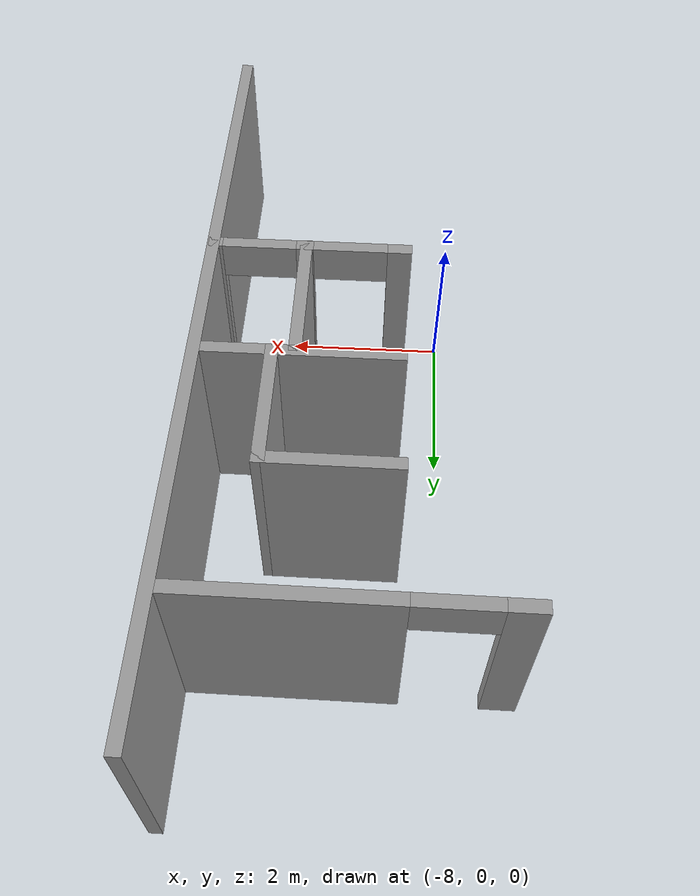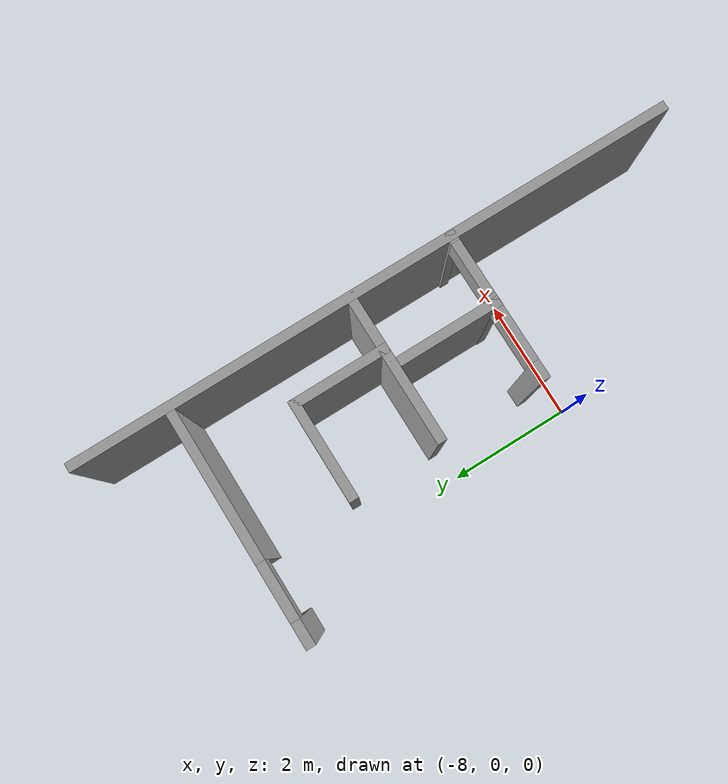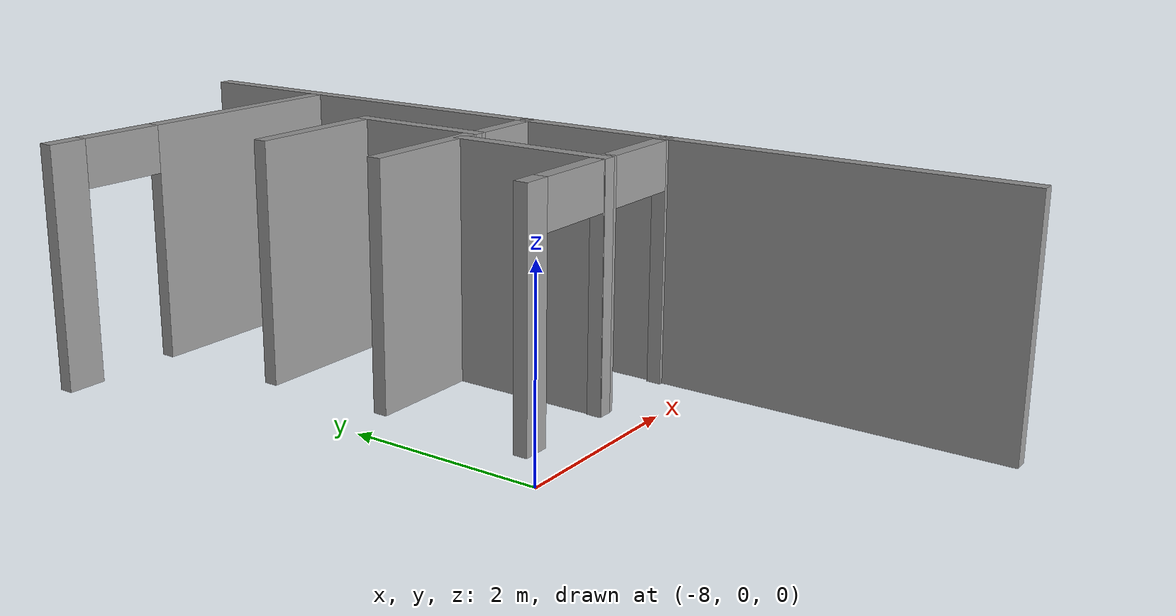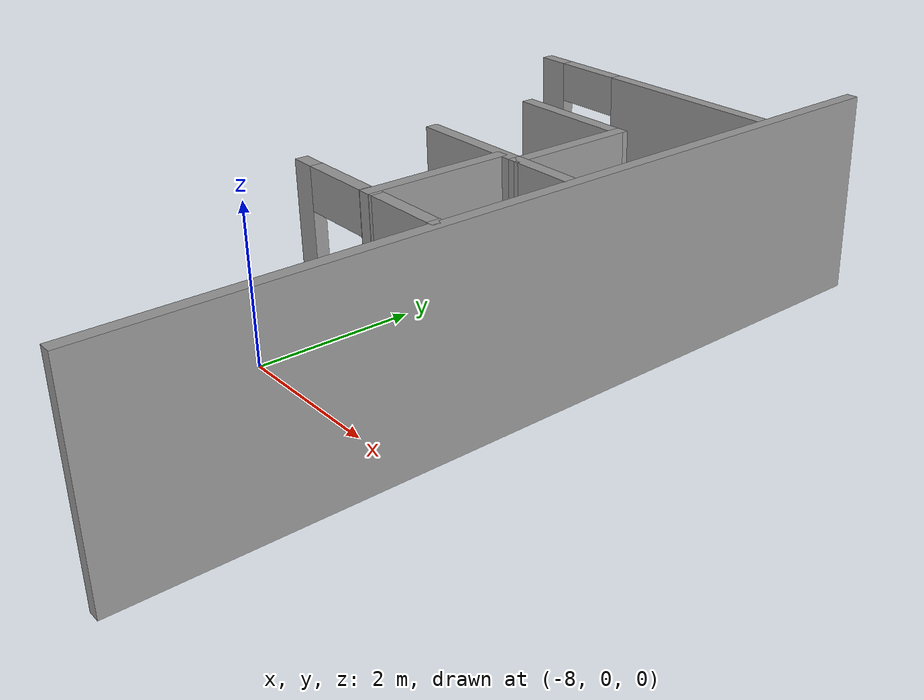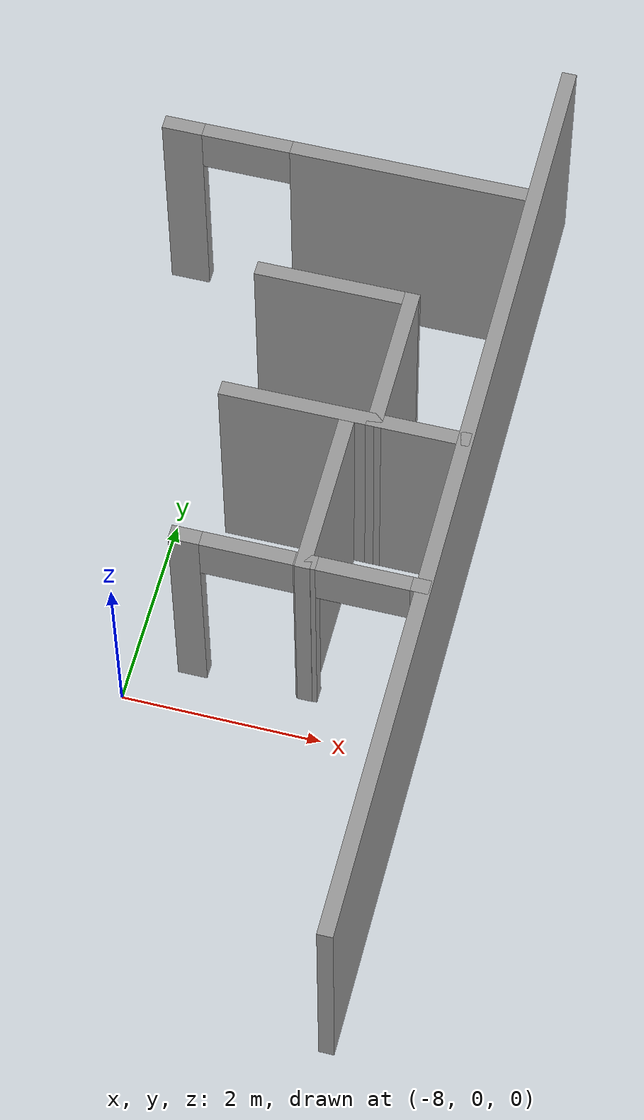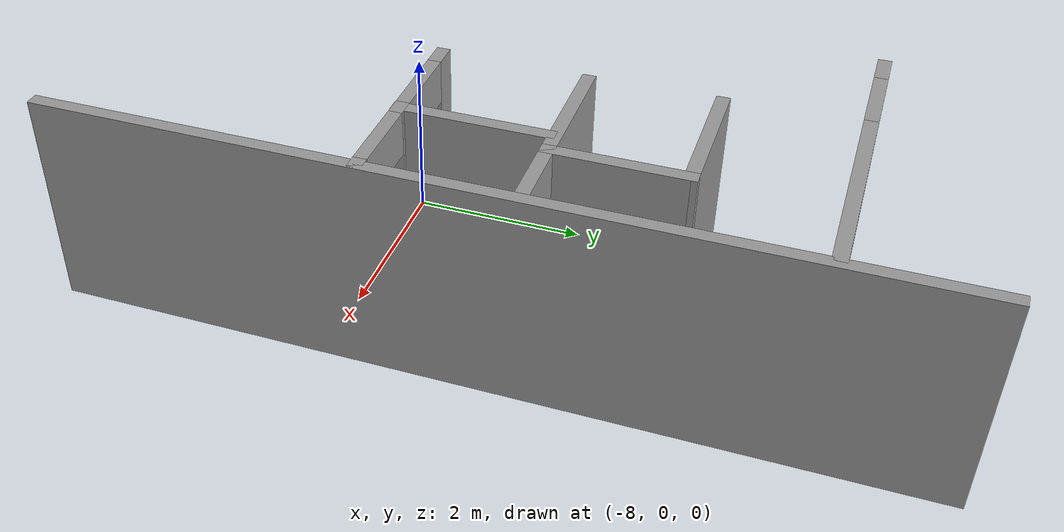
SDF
<sdf version="1.7">
 <model name="batimentH">
  <link name="Wall_12">
   <pose>-7.02318 5.08516 0 0 -0 0</pose>
   <visual name="Wall_12_Visual_0">
    <pose>-1.67123 0 1.25 0 -0 0</pose>
    <geometry><box><size>0.40754 0.15 2.5</size></box></geometry>
    <material>
     <script><uri>file://media/materials/scripts/gazebo.material</uri><name>Gazebo/Grey</name></script>
     <ambient>1 1 1 1</ambient>
     <shader type="pixel"/>
    </material>
    <meta><layer>0</layer></meta>
   </visual>
   <visual name="Wall_12_Visual_1">
    <pose>0.65377 0 1.25 0 -0 0</pose>
    <geometry><box><size>2.44246 0.15 2.5</size></box></geometry>
    <material>
     <script><uri>file://media/materials/scripts/gazebo.material</uri><name>Gazebo/Grey</name></script>
     <ambient>1 1 1 1</ambient>
     <shader type="pixel"/>
    </material>
    <meta><layer>0</layer></meta>
   </visual>
   <visual name="Wall_12_Visual_2">
    <pose>-1.01746 0 2.25 0 -0 0</pose>
    <geometry><box><size>0.9 0.15 0.5</size></box></geometry>
    <material>
     <script><uri>file://media/materials/scripts/gazebo.material</uri><name>Gazebo/Grey</name></script>
     <ambient>1 1 1 1</ambient>
     <shader type="pixel"/>
    </material>
    <meta><layer>0</layer></meta>
   </visual>
   <collision name="Wall_12_Collision_0">
    <pose>-1.67123 0 1.25 0 -0 0</pose>
    <geometry><box><size>0.40754 0.15 2.5</size></box></geometry>
    <surface>
     <friction>
      <ode><mu>1</mu><mu2>1</mu2><fdir1>0 0 0</fdir1><slip1>0</slip1><slip2>0</slip2></ode>
      <torsional>
       <coefficient>1</coefficient>
       <patch_radius>0</patch_radius>
       <surface_radius>0</surface_radius>
       <use_patch_radius>1</use_patch_radius>
       <ode><slip>0</slip></ode>
      </torsional>
     </friction>
     <bounce><restitution_coefficient>0</restitution_coefficient><threshold>1e+06</threshold></bounce>
     <contact>
      <collide_without_contact>0</collide_without_contact>
      <collide_without_contact_bitmask>1</collide_without_contact_bitmask>
      <collide_bitmask>1</collide_bitmask>
      <ode>
       <soft_cfm>0</soft_cfm>
       <soft_erp>0.2</soft_erp>
       <kp>1e+13</kp>
       <kd>1</kd>
       <max_vel>0.01</max_vel>
       <min_depth>0</min_depth>
      </ode>
      <bullet>
       <split_impulse>1</split_impulse>
       <split_impulse_penetration_threshold>-0.01</split_impulse_penetration_threshold>
       <soft_cfm>0</soft_cfm>
       <soft_erp>0.2</soft_erp>
       <kp>1e+13</kp>
       <kd>1</kd>
      </bullet>
     </contact>
    </surface>
   </collision>
   <collision name="Wall_12_Collision_1">
    <pose>0.65377 0 1.25 0 -0 0</pose>
    <geometry><box><size>2.44246 0.15 2.5</size></box></geometry>
    <surface>
     <friction>
      <ode><mu>1</mu><mu2>1</mu2><fdir1>0 0 0</fdir1><slip1>0</slip1><slip2>0</slip2></ode>
      <torsional>
       <coefficient>1</coefficient>
       <patch_radius>0</patch_radius>
       <surface_radius>0</surface_radius>
       <use_patch_radius>1</use_patch_radius>
       <ode><slip>0</slip></ode>
      </torsional>
     </friction>
     <bounce><restitution_coefficient>0</restitution_coefficient><threshold>1e+06</threshold></bounce>
     <contact>
      <collide_without_contact>0</collide_without_contact>
      <collide_without_contact_bitmask>1</collide_without_contact_bitmask>
      <collide_bitmask>1</collide_bitmask>
      <ode>
       <soft_cfm>0</soft_cfm>
       <soft_erp>0.2</soft_erp>
       <kp>1e+13</kp>
       <kd>1</kd>
       <max_vel>0.01</max_vel>
       <min_depth>0</min_depth>
      </ode>
      <bullet>
       <split_impulse>1</split_impulse>
       <split_impulse_penetration_threshold>-0.01</split_impulse_penetration_threshold>
       <soft_cfm>0</soft_cfm>
       <soft_erp>0.2</soft_erp>
       <kp>1e+13</kp>
       <kd>1</kd>
      </bullet>
     </contact>
    </surface>
   </collision>
   <collision name="Wall_12_Collision_2">
    <pose>-1.01746 0 2.25 0 -0 0</pose>
    <geometry><box><size>0.9 0.15 0.5</size></box></geometry>
    <surface>
     <friction>
      <ode><mu>1</mu><mu2>1</mu2><fdir1>0 0 0</fdir1><slip1>0</slip1><slip2>0</slip2></ode>
      <torsional>
       <coefficient>1</coefficient>
       <patch_radius>0</patch_radius>
       <surface_radius>0</surface_radius>
       <use_patch_radius>1</use_patch_radius>
       <ode><slip>0</slip></ode>
      </torsional>
     </friction>
     <bounce><restitution_coefficient>0</restitution_coefficient><threshold>1e+06</threshold></bounce>
     <contact>
      <collide_without_contact>0</collide_without_contact>
      <collide_without_contact_bitmask>1</collide_without_contact_bitmask>
      <collide_bitmask>1</collide_bitmask>
      <ode>
       <soft_cfm>0</soft_cfm>
       <soft_erp>0.2</soft_erp>
       <kp>1e+13</kp>
       <kd>1</kd>
       <max_vel>0.01</max_vel>
       <min_depth>0</min_depth>
      </ode>
      <bullet>
       <split_impulse>1</split_impulse>
       <split_impulse_penetration_threshold>-0.01</split_impulse_penetration_threshold>
       <soft_cfm>0</soft_cfm>
       <soft_erp>0.2</soft_erp>
       <kp>1e+13</kp>
       <kd>1</kd>
      </bullet>
     </contact>
    </surface>
   </collision>
  </link>
  <link name="Wall_16">
   <pose>-5.12746 1.74768 0 0 -0 1.5708</pose>
   <visual name="Wall_16_Visual">
    <pose>0 0 1.25 0 -0 0</pose>
    <geometry><box><size>9.82652 0.15 2.5</size></box></geometry>
    <material>
     <script><uri>file://media/materials/scripts/gazebo.material</uri><name>Gazebo/Grey</name></script>
     <ambient>1 1 1 1</ambient>
     <shader type="pixel"/>
    </material>
    <meta><layer>0</layer></meta>
   </visual>
   <collision name="Wall_16_Collision">
    <pose>0 0 1.25 0 -0 0</pose>
    <geometry><box><size>9.82652 0.15 2.5</size></box></geometry>
    <surface>
     <friction>
      <ode><mu>1</mu><mu2>1</mu2><fdir1>0 0 0</fdir1><slip1>0</slip1><slip2>0</slip2></ode>
      <torsional>
       <coefficient>1</coefficient>
       <patch_radius>0</patch_radius>
       <surface_radius>0</surface_radius>
       <use_patch_radius>1</use_patch_radius>
       <ode><slip>0</slip></ode>
      </torsional>
     </friction>
     <bounce><restitution_coefficient>0</restitution_coefficient><threshold>1e+06</threshold></bounce>
     <contact>
      <collide_without_contact>0</collide_without_contact>
      <collide_without_contact_bitmask>1</collide_without_contact_bitmask>
      <collide_bitmask>1</collide_bitmask>
      <ode>
       <soft_cfm>0</soft_cfm>
       <soft_erp>0.2</soft_erp>
       <kp>1e+13</kp>
       <kd>1</kd>
       <max_vel>0.01</max_vel>
       <min_depth>0</min_depth>
      </ode>
      <bullet>
       <split_impulse>1</split_impulse>
       <split_impulse_penetration_threshold>-0.01</split_impulse_penetration_threshold>
       <soft_cfm>0</soft_cfm>
       <soft_erp>0.2</soft_erp>
       <kp>1e+13</kp>
       <kd>1</kd>
      </bullet>
     </contact>
    </surface>
   </collision>
  </link>
  <link name="Wall_20">
   <pose>-6.74218 3.58667 0 0 0 -0.000439</pose>
   <visual name="Wall_20_Visual">
    <pose>0 0 1.25 0 -0 0</pose>
    <geometry><box><size>1.62056 0.15 2.5</size></box></geometry>
    <material>
     <script><uri>file://media/materials/scripts/gazebo.material</uri><name>Gazebo/Grey</name></script>
     <ambient>1 1 1 1</ambient>
     <shader type="pixel"/>
    </material>
    <meta><layer>0</layer></meta>
   </visual>
   <collision name="Wall_20_Collision">
    <pose>0 0 1.25 0 -0 0</pose>
    <geometry><box><size>1.62056 0.15 2.5</size></box></geometry>
    <surface>
     <friction>
      <ode><mu>1</mu><mu2>1</mu2><fdir1>0 0 0</fdir1><slip1>0</slip1><slip2>0</slip2></ode>
      <torsional>
       <coefficient>1</coefficient>
       <patch_radius>0</patch_radius>
       <surface_radius>0</surface_radius>
       <use_patch_radius>1</use_patch_radius>
       <ode><slip>0</slip></ode>
      </torsional>
     </friction>
     <bounce><restitution_coefficient>0</restitution_coefficient><threshold>1e+06</threshold></bounce>
     <contact>
      <collide_without_contact>0</collide_without_contact>
      <collide_without_contact_bitmask>1</collide_without_contact_bitmask>
      <collide_bitmask>1</collide_bitmask>
      <ode>
       <soft_cfm>0</soft_cfm>
       <soft_erp>0.2</soft_erp>
       <kp>1e+13</kp>
       <kd>1</kd>
       <max_vel>0.01</max_vel>
       <min_depth>0</min_depth>
      </ode>
      <bullet>
       <split_impulse>1</split_impulse>
       <split_impulse_penetration_threshold>-0.01</split_impulse_penetration_threshold>
       <soft_cfm>0</soft_cfm>
       <soft_erp>0.2</soft_erp>
       <kp>1e+13</kp>
       <kd>1</kd>
      </bullet>
     </contact>
    </surface>
   </collision>
  </link>
  <link name="Wall_21">
   <pose>-6.0069 2.86964 0 0 0 -1.5708</pose>
   <visual name="Wall_21_Visual">
    <pose>0 0 1.25 0 -0 0</pose>
    <geometry><box><size>1.58344 0.15 2.5</size></box></geometry>
    <material>
     <script><uri>file://media/materials/scripts/gazebo.material</uri><name>Gazebo/Grey</name></script>
     <ambient>1 1 1 1</ambient>
     <shader type="pixel"/>
    </material>
    <meta><layer>0</layer></meta>
   </visual>
   <collision name="Wall_21_Collision">
    <pose>0 0 1.25 0 -0 0</pose>
    <geometry><box><size>1.58344 0.15 2.5</size></box></geometry>
    <surface>
     <friction>
      <ode><mu>1</mu><mu2>1</mu2><fdir1>0 0 0</fdir1><slip1>0</slip1><slip2>0</slip2></ode>
      <torsional>
       <coefficient>1</coefficient>
       <patch_radius>0</patch_radius>
       <surface_radius>0</surface_radius>
       <use_patch_radius>1</use_patch_radius>
       <ode><slip>0</slip></ode>
      </torsional>
     </friction>
     <bounce><restitution_coefficient>0</restitution_coefficient><threshold>1e+06</threshold></bounce>
     <contact>
      <collide_without_contact>0</collide_without_contact>
      <collide_without_contact_bitmask>1</collide_without_contact_bitmask>
      <collide_bitmask>1</collide_bitmask>
      <ode>
       <soft_cfm>0</soft_cfm>
       <soft_erp>0.2</soft_erp>
       <kp>1e+13</kp>
       <kd>1</kd>
       <max_vel>0.01</max_vel>
       <min_depth>0</min_depth>
      </ode>
      <bullet>
       <split_impulse>1</split_impulse>
       <split_impulse_penetration_threshold>-0.01</split_impulse_penetration_threshold>
       <soft_cfm>0</soft_cfm>
       <soft_erp>0.2</soft_erp>
       <kp>1e+13</kp>
       <kd>1</kd>
      </bullet>
     </contact>
    </surface>
   </collision>
  </link>
  <link name="Wall_22">
   <pose>-6.72679 2.15312 0 0 -0 3.14132</pose>
   <visual name="Wall_22_Visual">
    <pose>0 0 1.25 0 -0 0</pose>
    <geometry><box><size>1.58979 0.15 2.5</size></box></geometry>
    <material>
     <script><uri>file://media/materials/scripts/gazebo.material</uri><name>Gazebo/Grey</name></script>
     <ambient>1 1 1 1</ambient>
     <shader type="pixel"/>
    </material>
    <meta><layer>0</layer></meta>
   </visual>
   <collision name="Wall_22_Collision">
    <pose>0 0 1.25 0 -0 0</pose>
    <geometry><box><size>1.58979 0.15 2.5</size></box></geometry>
    <surface>
     <friction>
      <ode><mu>1</mu><mu2>1</mu2><fdir1>0 0 0</fdir1><slip1>0</slip1><slip2>0</slip2></ode>
      <torsional>
       <coefficient>1</coefficient>
       <patch_radius>0</patch_radius>
       <surface_radius>0</surface_radius>
       <use_patch_radius>1</use_patch_radius>
       <ode><slip>0</slip></ode>
      </torsional>
     </friction>
     <bounce><restitution_coefficient>0</restitution_coefficient><threshold>1e+06</threshold></bounce>
     <contact>
      <collide_without_contact>0</collide_without_contact>
      <collide_without_contact_bitmask>1</collide_without_contact_bitmask>
      <collide_bitmask>1</collide_bitmask>
      <ode>
       <soft_cfm>0</soft_cfm>
       <soft_erp>0.2</soft_erp>
       <kp>1e+13</kp>
       <kd>1</kd>
       <max_vel>0.01</max_vel>
       <min_depth>0</min_depth>
      </ode>
      <bullet>
       <split_impulse>1</split_impulse>
       <split_impulse_penetration_threshold>-0.01</split_impulse_penetration_threshold>
       <soft_cfm>0</soft_cfm>
       <soft_erp>0.2</soft_erp>
       <kp>1e+13</kp>
       <kd>1</kd>
      </bullet>
     </contact>
    </surface>
   </collision>
  </link>
  <link name="Wall_24">
   <pose>-6.30874 0.487126 0 0 -0 7.8e-05</pose>
   <visual name="Wall_24_Visual_0">
    <pose>-1.09192 0 1.25 0 -0 0</pose>
    <geometry><box><size>0.294914 0.15 2.5</size></box></geometry>
    <material>
     <script><uri>file://media/materials/scripts/gazebo.material</uri><name>Gazebo/Grey</name></script>
     <ambient>1 1 1 1</ambient>
     <shader type="pixel"/>
    </material>
    <meta><layer>0</layer></meta>
   </visual>
   <visual name="Wall_24_Visual_1">
    <pose>0.061146 0 1.25 0 -0 0</pose>
    <geometry><box><size>0.211218 0.15 2.5</size></box></geometry>
    <material>
     <script><uri>file://media/materials/scripts/gazebo.material</uri><name>Gazebo/Grey</name></script>
     <ambient>1 1 1 1</ambient>
     <shader type="pixel"/>
    </material>
    <meta><layer>0</layer></meta>
   </visual>
   <visual name="Wall_24_Visual_2">
    <pose>1.15307 0 1.25 0 -0 0</pose>
    <geometry><box><size>0.172622 0.15 2.5</size></box></geometry>
    <material>
     <script><uri>file://media/materials/scripts/gazebo.material</uri><name>Gazebo/Grey</name></script>
     <ambient>1 1 1 1</ambient>
     <shader type="pixel"/>
    </material>
    <meta><layer>0</layer></meta>
   </visual>
   <visual name="Wall_24_Visual_3">
    <pose>-0.494463 0 2.25 0 -0 0</pose>
    <geometry><box><size>0.9 0.15 0.5</size></box></geometry>
    <material>
     <script><uri>file://media/materials/scripts/gazebo.material</uri><name>Gazebo/Grey</name></script>
     <ambient>1 1 1 1</ambient>
     <shader type="pixel"/>
    </material>
    <meta><layer>0</layer></meta>
   </visual>
   <visual name="Wall_24_Visual_4">
    <pose>0.616755 0 2.25 0 -0 0</pose>
    <geometry><box><size>0.9 0.15 0.5</size></box></geometry>
    <material>
     <script><uri>file://media/materials/scripts/gazebo.material</uri><name>Gazebo/Grey</name></script>
     <ambient>1 1 1 1</ambient>
     <shader type="pixel"/>
    </material>
    <meta><layer>0</layer></meta>
   </visual>
   <collision name="Wall_24_Collision_0">
    <pose>-1.09192 0 1.25 0 -0 0</pose>
    <geometry><box><size>0.294914 0.15 2.5</size></box></geometry>
    <surface>
     <friction>
      <ode><mu>1</mu><mu2>1</mu2><fdir1>0 0 0</fdir1><slip1>0</slip1><slip2>0</slip2></ode>
      <torsional>
       <coefficient>1</coefficient>
       <patch_radius>0</patch_radius>
       <surface_radius>0</surface_radius>
       <use_patch_radius>1</use_patch_radius>
       <ode><slip>0</slip></ode>
      </torsional>
     </friction>
     <bounce><restitution_coefficient>0</restitution_coefficient><threshold>1e+06</threshold></bounce>
     <contact>
      <collide_without_contact>0</collide_without_contact>
      <collide_without_contact_bitmask>1</collide_without_contact_bitmask>
      <collide_bitmask>1</collide_bitmask>
      <ode>
       <soft_cfm>0</soft_cfm>
       <soft_erp>0.2</soft_erp>
       <kp>1e+13</kp>
       <kd>1</kd>
       <max_vel>0.01</max_vel>
       <min_depth>0</min_depth>
      </ode>
      <bullet>
       <split_impulse>1</split_impulse>
       <split_impulse_penetration_threshold>-0.01</split_impulse_penetration_threshold>
       <soft_cfm>0</soft_cfm>
       <soft_erp>0.2</soft_erp>
       <kp>1e+13</kp>
       <kd>1</kd>
      </bullet>
     </contact>
    </surface>
   </collision>
   <collision name="Wall_24_Collision_2">
    <pose>1.15307 0 1.25 0 -0 0</pose>
    <geometry><box><size>0.172622 0.15 2.5</size></box></geometry>
    <surface>
     <friction>
      <ode><mu>1</mu><mu2>1</mu2><fdir1>0 0 0</fdir1><slip1>0</slip1><slip2>0</slip2></ode>
      <torsional>
       <coefficient>1</coefficient>
       <patch_radius>0</patch_radius>
       <surface_radius>0</surface_radius>
       <use_patch_radius>1</use_patch_radius>
       <ode><slip>0</slip></ode>
      </torsional>
     </friction>
     <bounce><restitution_coefficient>0</restitution_coefficient><threshold>1e+06</threshold></bounce>
     <contact>
      <collide_without_contact>0</collide_without_contact>
      <collide_without_contact_bitmask>1</collide_without_contact_bitmask>
      <collide_bitmask>1</collide_bitmask>
      <ode>
       <soft_cfm>0</soft_cfm>
       <soft_erp>0.2</soft_erp>
       <kp>1e+13</kp>
       <kd>1</kd>
       <max_vel>0.01</max_vel>
       <min_depth>0</min_depth>
      </ode>
      <bullet>
       <split_impulse>1</split_impulse>
       <split_impulse_penetration_threshold>-0.01</split_impulse_penetration_threshold>
       <soft_cfm>0</soft_cfm>
       <soft_erp>0.2</soft_erp>
       <kp>1e+13</kp>
       <kd>1</kd>
      </bullet>
     </contact>
    </surface>
   </collision>
   <collision name="Wall_24_Collision_1">
    <pose>0.061146 0 1.25 0 -0 0</pose>
    <geometry><box><size>0.211218 0.15 2.5</size></box></geometry>
    <surface>
     <friction>
      <ode><mu>1</mu><mu2>1</mu2><fdir1>0 0 0</fdir1><slip1>0</slip1><slip2>0</slip2></ode>
      <torsional>
       <coefficient>1</coefficient>
       <patch_radius>0</patch_radius>
       <surface_radius>0</surface_radius>
       <use_patch_radius>1</use_patch_radius>
       <ode><slip>0</slip></ode>
      </torsional>
     </friction>
     <bounce><restitution_coefficient>0</restitution_coefficient><threshold>1e+06</threshold></bounce>
     <contact>
      <collide_without_contact>0</collide_without_contact>
      <collide_without_contact_bitmask>1</collide_without_contact_bitmask>
      <collide_bitmask>1</collide_bitmask>
      <ode>
       <soft_cfm>0</soft_cfm>
       <soft_erp>0.2</soft_erp>
       <kp>1e+13</kp>
       <kd>1</kd>
       <max_vel>0.01</max_vel>
       <min_depth>0</min_depth>
      </ode>
      <bullet>
       <split_impulse>1</split_impulse>
       <split_impulse_penetration_threshold>-0.01</split_impulse_penetration_threshold>
       <soft_cfm>0</soft_cfm>
       <soft_erp>0.2</soft_erp>
       <kp>1e+13</kp>
       <kd>1</kd>
      </bullet>
     </contact>
    </surface>
   </collision>
   <collision name="Wall_24_Collision_3">
    <pose>-0.494463 0 2.25 0 -0 0</pose>
    <geometry><box><size>0.9 0.15 0.5</size></box></geometry>
    <surface>
     <friction>
      <ode><mu>1</mu><mu2>1</mu2><fdir1>0 0 0</fdir1><slip1>0</slip1><slip2>0</slip2></ode>
      <torsional>
       <coefficient>1</coefficient>
       <patch_radius>0</patch_radius>
       <surface_radius>0</surface_radius>
       <use_patch_radius>1</use_patch_radius>
       <ode><slip>0</slip></ode>
      </torsional>
     </friction>
     <bounce><restitution_coefficient>0</restitution_coefficient><threshold>1e+06</threshold></bounce>
     <contact>
      <collide_without_contact>0</collide_without_contact>
      <collide_without_contact_bitmask>1</collide_without_contact_bitmask>
      <collide_bitmask>1</collide_bitmask>
      <ode>
       <soft_cfm>0</soft_cfm>
       <soft_erp>0.2</soft_erp>
       <kp>1e+13</kp>
       <kd>1</kd>
       <max_vel>0.01</max_vel>
       <min_depth>0</min_depth>
      </ode>
      <bullet>
       <split_impulse>1</split_impulse>
       <split_impulse_penetration_threshold>-0.01</split_impulse_penetration_threshold>
       <soft_cfm>0</soft_cfm>
       <soft_erp>0.2</soft_erp>
       <kp>1e+13</kp>
       <kd>1</kd>
      </bullet>
     </contact>
    </surface>
   </collision>
   <collision name="Wall_24_Collision_4">
    <pose>0.616755 0 2.25 0 -0 0</pose>
    <geometry><box><size>0.9 0.15 0.5</size></box></geometry>
    <surface>
     <friction>
      <ode><mu>1</mu><mu2>1</mu2><fdir1>0 0 0</fdir1><slip1>0</slip1><slip2>0</slip2></ode>
      <torsional>
       <coefficient>1</coefficient>
       <patch_radius>0</patch_radius>
       <surface_radius>0</surface_radius>
       <use_patch_radius>1</use_patch_radius>
       <ode><slip>0</slip></ode>
      </torsional>
     </friction>
     <bounce><restitution_coefficient>0</restitution_coefficient><threshold>1e+06</threshold></bounce>
     <contact>
      <collide_without_contact>0</collide_without_contact>
      <collide_without_contact_bitmask>1</collide_without_contact_bitmask>
      <collide_bitmask>1</collide_bitmask>
      <ode>
       <soft_cfm>0</soft_cfm>
       <soft_erp>0.2</soft_erp>
       <kp>1e+13</kp>
       <kd>1</kd>
       <max_vel>0.01</max_vel>
       <min_depth>0</min_depth>
      </ode>
      <bullet>
       <split_impulse>1</split_impulse>
       <split_impulse_penetration_threshold>-0.01</split_impulse_penetration_threshold>
       <soft_cfm>0</soft_cfm>
       <soft_erp>0.2</soft_erp>
       <kp>1e+13</kp>
       <kd>1</kd>
      </bullet>
     </contact>
    </surface>
   </collision>
  </link>
  <link name="Wall_31">
   <pose>-5.5819 2.15293 0 0 -0 0</pose>
   <visual name="Wall_31_Visual">
    <pose>0 0 1.25 0 -0 0</pose>
    <geometry><box><size>1 0.15 2.5</size></box></geometry>
    <material>
     <script><uri>file://media/materials/scripts/gazebo.material</uri><name>Gazebo/Grey</name></script>
     <ambient>1 1 1 1</ambient>
     <shader type="pixel"/>
    </material>
    <meta><layer>0</layer></meta>
   </visual>
   <collision name="Wall_31_Collision">
    <pose>0 0 1.25 0 -0 0</pose>
    <geometry><box><size>1 0.15 2.5</size></box></geometry>
    <surface>
     <friction>
      <ode><mu>1</mu><mu2>1</mu2><fdir1>0 0 0</fdir1><slip1>0</slip1><slip2>0</slip2></ode>
      <torsional>
       <coefficient>1</coefficient>
       <patch_radius>0</patch_radius>
       <surface_radius>0</surface_radius>
       <use_patch_radius>1</use_patch_radius>
       <ode><slip>0</slip></ode>
      </torsional>
     </friction>
     <bounce><restitution_coefficient>0</restitution_coefficient><threshold>1e+06</threshold></bounce>
     <contact>
      <collide_without_contact>0</collide_without_contact>
      <collide_without_contact_bitmask>1</collide_without_contact_bitmask>
      <collide_bitmask>1</collide_bitmask>
      <ode>
       <soft_cfm>0</soft_cfm>
       <soft_erp>0.2</soft_erp>
       <kp>1e+13</kp>
       <kd>1</kd>
       <max_vel>0.01</max_vel>
       <min_depth>0</min_depth>
      </ode>
      <bullet>
       <split_impulse>1</split_impulse>
       <split_impulse_penetration_threshold>-0.01</split_impulse_penetration_threshold>
       <soft_cfm>0</soft_cfm>
       <soft_erp>0.2</soft_erp>
       <kp>1e+13</kp>
       <kd>1</kd>
      </bullet>
     </contact>
    </surface>
   </collision>
  </link>
  <link name="Wall_33">
   <pose>-6.26514 1.28314 0 0 -0 1.5708</pose>
   <visual name="Wall_33_Visual">
    <pose>0 0 1.25 0 -0 0</pose>
    <geometry><box><size>1.75 0.15 2.5</size></box></geometry>
    <material>
     <script><uri>file://media/materials/scripts/gazebo.material</uri><name>Gazebo/Grey</name></script>
     <ambient>1 1 1 1</ambient>
     <shader type="pixel"/>
    </material>
    <meta><layer>0</layer></meta>
   </visual>
   <collision name="Wall_33_Collision">
    <pose>0 0 1.25 0 -0 0</pose>
    <geometry><box><size>1.75 0.15 2.5</size></box></geometry>
    <surface>
     <friction>
      <ode><mu>1</mu><mu2>1</mu2><fdir1>0 0 0</fdir1><slip1>0</slip1><slip2>0</slip2></ode>
      <torsional>
       <coefficient>1</coefficient>
       <patch_radius>0</patch_radius>
       <surface_radius>0</surface_radius>
       <use_patch_radius>1</use_patch_radius>
       <ode><slip>0</slip></ode>
      </torsional>
     </friction>
     <bounce><restitution_coefficient>0</restitution_coefficient><threshold>1e+06</threshold></bounce>
     <contact>
      <collide_without_contact>0</collide_without_contact>
      <collide_without_contact_bitmask>1</collide_without_contact_bitmask>
      <collide_bitmask>1</collide_bitmask>
      <ode>
       <soft_cfm>0</soft_cfm>
       <soft_erp>0.2</soft_erp>
       <kp>1e+13</kp>
       <kd>1</kd>
       <max_vel>0.01</max_vel>
       <min_depth>0</min_depth>
      </ode>
      <bullet>
       <split_impulse>1</split_impulse>
       <split_impulse_penetration_threshold>-0.01</split_impulse_penetration_threshold>
       <soft_cfm>0</soft_cfm>
       <soft_erp>0.2</soft_erp>
       <kp>1e+13</kp>
       <kd>1</kd>
      </bullet>
     </contact>
    </surface>
   </collision>
  </link>
  <static>1</static>
 </model>
</sdf>
